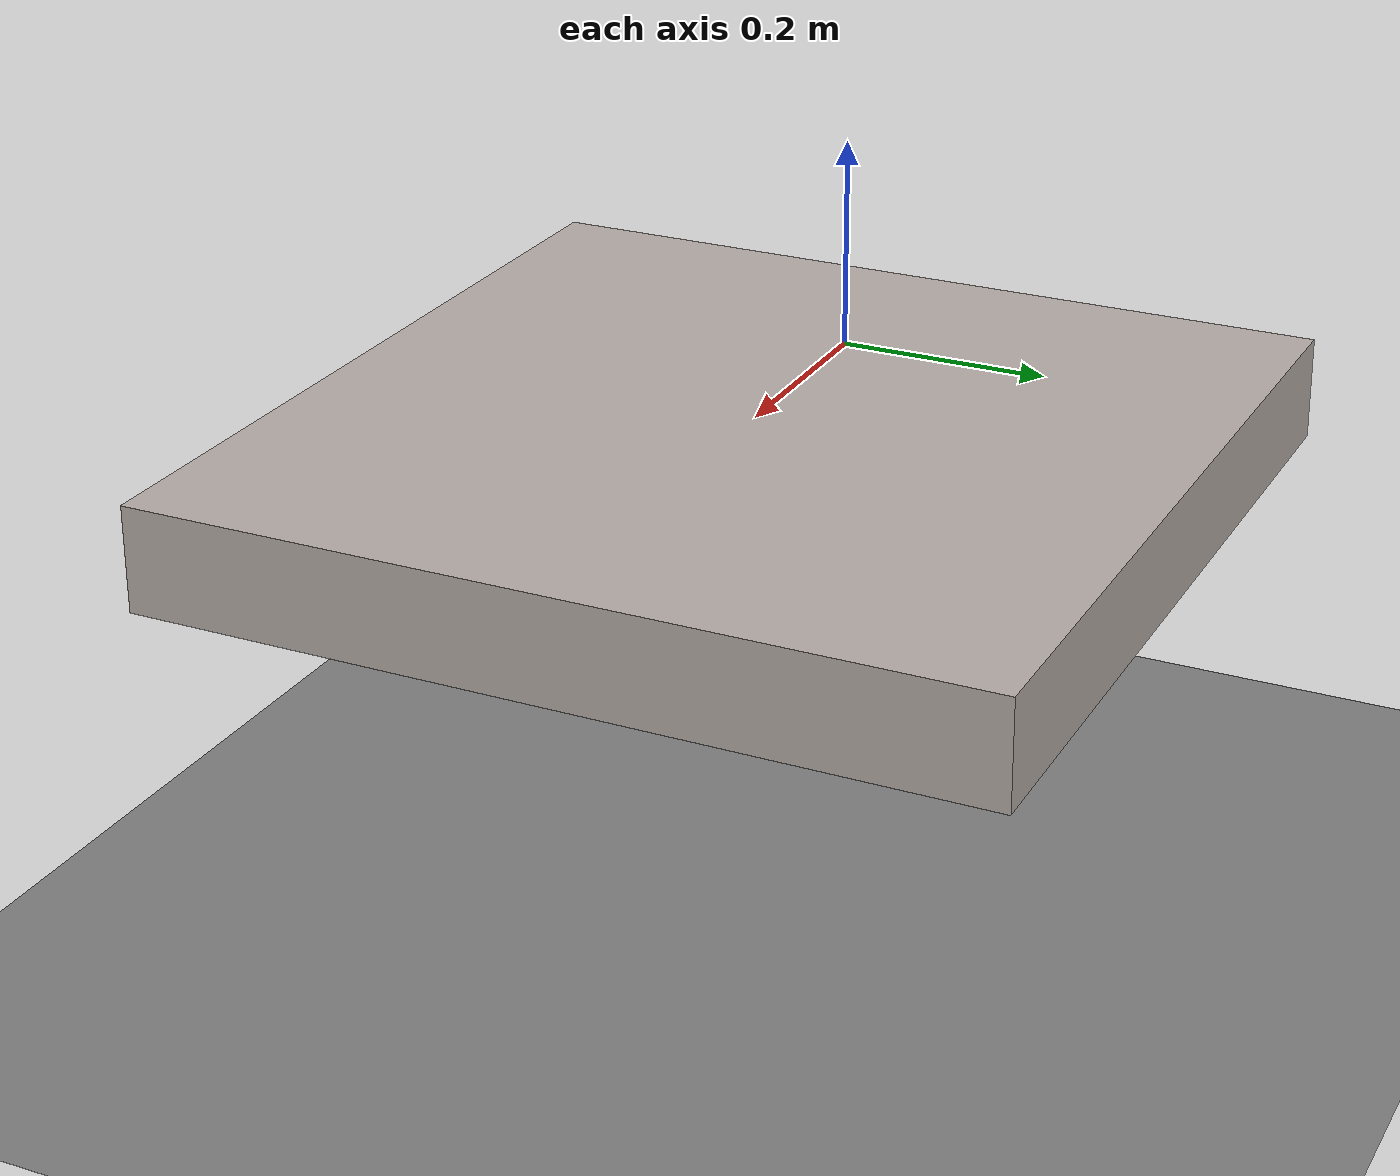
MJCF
<mujoco>
    <asset>
        <texture name="noise"
                 type="2d"
                 builtin="flat"
                 width="256"
                 height="256"
                 rgb1="0.5 0.5 0.5"/>

        <material name="noise_mat"
                texture="noise"
                texrepeat="10 10"/>

        <material name="ground_mat"
                rgba="0.72 0.68 0.66 1"/>
    </asset>
    <worldbody>
        <!-- 1. The infinite floor backdrop layer stays deep below the action -->
        <geom name="background"
            type="plane"
            size="10 10 0.1"
            pos="0 0 -0.5"
            material="noise_mat"/>

        <!-- 2. Change 'ground' from a plane to a structural 3D Box (Tabletop) -->
        <!-- Size for box is half-lengths: [half_width_X, half_depth_Y, half_thickness_Z] -->
        <!-- A half-thickness of 0.05 gives you a solid 10cm thick block -->
        <geom name="ground"
            type="box"
            size="0.4 0.4 0.05"
            pos="0.2 0.0 -0.05"
            material="ground_mat"
            contype="1"
            conaffinity="1"/>
    </worldbody>
</mujoco>
